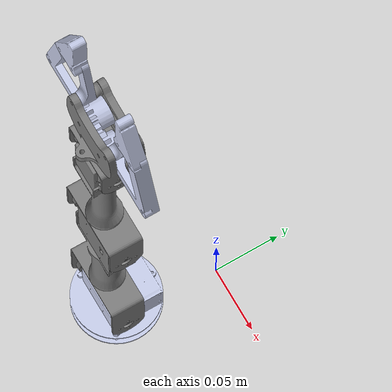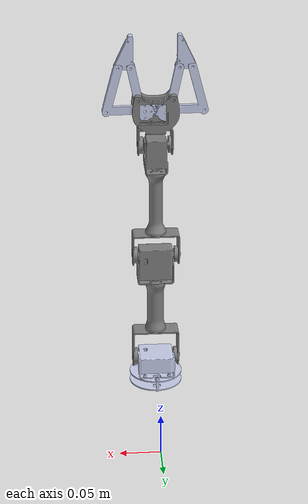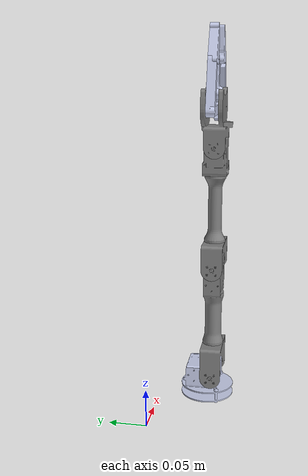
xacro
<?xml version="1.0"?>
<!-- Basic differential drive mobile base -->
<robot xmlns:xacro="http://www.ros.org/wiki/xacro" name="diffdrive_robot">
 <link
        name="arm_Rot">
        <inertial>
            <origin
                xyz="-1.27894101951934E-05 0.0208058767653727 0.00585680210359747"
                rpy="0 0 0" />
            <mass
                value="0.0689676051678483" />
            <inertia
                ixx="1.10736817655159E-05"
                ixy="-9.06572517495388E-09"
                ixz="-2.13237951815141E-10"
                iyy="2.24480121987499E-05"
                iyz="-4.10984989642458E-07"
                izz="1.70252517510809E-05" />
        </inertial>
        <visual>
            <origin
                xyz="0 0 0"
                rpy="0 0 0" />
            <geometry>
                <mesh
                    filename="file://$(find mirte_master_description)/meshes/arm_Rot.STL" />
            </geometry>
            <material
                name="">
                <color
                    rgba="0.792156862745098 0.819607843137255 0.933333333333333 1" />
            </material>
        </visual>
        <collision>
            <origin
                xyz="0 0 0"
                rpy="0 0 0" />
            <geometry>
                <mesh
                    filename="file://$(find mirte_master_description)/meshes/arm_Rot.STL" />
            </geometry>
        </collision>
    </link>
    <joint
        name="arm_Rot_joint"
        type="revolute">
        <origin
            xyz="0 -0.079274 0.06"
            rpy="1.5708 0 3.1416" />
        <parent
            link="frame_link" />
        <child
            link="arm_Rot" />
        <axis
            xyz="0 1 0" />
        <limit
            lower="${pi/-2}"
            upper="${pi/2}"
            effort="2"
            velocity="2"
        />
    </joint>
    <link
        name="arm_Shoulder">
        <inertial>
            <origin
                xyz="0.0764974362945755 0.000442680770353329 -4.93690401059954E-09"
                rpy="0 0 0" />
            <mass
                value="0.104616018825837" />
            <inertia
                ixx="3.85677839717214E-05"
                ixy="1.84827309047044E-08"
                ixz="1.42612941509626E-12"
                iyy="2.54245117502168E-05"
                iyz="-2.05142765424474E-12"
                izz="5.51611966703411E-05" />
        </inertial>
        <visual>
            <origin
                xyz="0 0 0"
                rpy="0 0 0" />
            <geometry>
                <mesh
                    filename="file://$(find mirte_master_description)/meshes/arm_Shoulder.STL" />
            </geometry>
            <material
                name="">
                <color
                    rgba="0.501960784313725 0.501960784313725 0.501960784313725 1" />
            </material>
        </visual>
        <collision>
            <origin
                xyz="0 0 0"
                rpy="0 0 0" />
            <geometry>
                <mesh
                    filename="file://$(find mirte_master_description)/meshes/arm_Shoulder.STL" />
            </geometry>
        </collision>
    </link>
    <joint
        name="arm_Shoulder_joint"
        type="revolute">
        <origin
            xyz="0 0.0281 -0.00625"
            rpy="3.1416 0 1.5708" />
        <parent
            link="arm_Rot" />
        <child
            link="arm_Shoulder" />
        <axis
            xyz="0 1 0" />
        <limit
            lower="${pi/-2}"
            upper="${pi/2}"
            effort="2"
            velocity="2"
        />
    </joint>
    <link
        name="arm_Elbow">
        <inertial>
            <origin
                xyz="0.000768647609078278 0.0642294520091309 -2.34835863116567E-08"
                rpy="0 0 0" />
            <mass
                value="0.0709795960901316" />
            <inertia
                ixx="2.06491501981418E-05"
                ixy="1.76077623308388E-08"
                ixz="-6.06300089698489E-13"
                iyy="2.45686930201746E-05"
                iyz="3.04033870141042E-12"
                izz="3.79131240892547E-05" />
        </inertial>
        <visual>
            <origin
                xyz="0 0 0"
                rpy="0 0 0" />
            <geometry>
                <mesh
                    filename="file://$(find mirte_master_description)/meshes/arm_Elbow.STL" />
            </geometry>
            <material
                name="">
                <color
                    rgba="0.501960784313725 0.501960784313725 0.501960784313725 1" />
            </material>
        </visual>
        <collision>
            <origin
                xyz="0 0 0"
                rpy="0 0 0" />
            <geometry>
                <mesh
                    filename="file://$(find mirte_master_description)/meshes/arm_Elbow.STL" />
            </geometry>
        </collision>
    </link>
    <joint
        name="arm_Elbow_joint"
        type="revolute">
        <origin
            xyz="0.1378 0 0"
            rpy="-3.1416 0 1.5708" />
        <parent
            link="arm_Shoulder" />
        <child
            link="arm_Elbow" />
        <axis
            xyz="1 0 0" />
        <limit
            lower="${pi/-2}"
            upper="${pi/2}"
            effort="2"
            velocity="2"
        />
    </joint>
    <link
        name="arm_Wrist">
        <inertial>
            <origin
                xyz="0.0225315136140379 0.000488092971965825 -2.74405760168628E-06"
                rpy="0 0 0" />
            <mass
                value="0.0464803878756425" />
            <inertia
                ixx="1.36228105923869E-05"
                ixy="-2.7486243117372E-08"
                ixz="-2.82180089490711E-08"
                iyy="7.22412070962973E-06"
                iyz="3.4652740053439E-09"
                izz="1.75204377049058E-05" />
        </inertial>
        <visual>
            <origin
                xyz="0 0 0"
                rpy="0 0 0" />
            <geometry>
                <mesh
                    filename="file://$(find mirte_master_description)/meshes/arm_Wrist.STL" />
            </geometry>
            <material
                name="">
                <color
                    rgba="0.501960784313725 0.501960784313725 0.501960784313725 1" />
            </material>
        </visual>
        <collision>
            <origin
                xyz="0 0 0"
                rpy="0 0 0" />
            <geometry>
                <mesh
                    filename="file://$(find mirte_master_description)/meshes/arm_Wrist.STL" />
            </geometry>
        </collision>
    </link>
    <joint
        name="arm_Wrist_joint"
        type="revolute">
        <origin
            xyz="-0.00014 0.14265 0"
            rpy="3.1416 0 1.5708" />
        <parent
            link="arm_Elbow" />
        <child
            link="arm_Wrist" />
        <axis
            xyz="0 1 0" />
        <limit
            lower="${pi/-2}"
            upper="${pi/2}"
            effort="2"
            velocity="2"
        />
    </joint>
    <link
        name="Gripper">
        <inertial>
            <origin
                xyz="0.0128439388984141 0.00467107677719844 -0.023531822516204"
                rpy="0 0 0" />
            <mass
                value="0.0109603788959771" />
            <inertia
                ixx="1.64287457972505E-06"
                ixy="-2.54915969005551E-10"
                ixz="-3.17766452649769E-07"
                iyy="2.96639543247368E-06"
                iyz="-7.8877045337556E-08"
                izz="1.49193844890504E-06" />
        </inertial>
        <visual>
            <origin
                xyz="0 0 0"
                rpy="0 0 0" />
            <geometry>
                <mesh
                    filename="file://$(find mirte_master_description)/meshes/Gripper.STL" />
            </geometry>
            <material
                name="">
                <color
                    rgba="0.792156862745098 0.819607843137255 0.933333333333333 1" />
            </material>
        </visual>
        <collision>
            <origin
                xyz="0 0 0"
                rpy="0 0 0" />
            <geometry>
                <mesh
                    filename="file://$(find mirte_master_description)/meshes/Gripper.STL" />
            </geometry>
        </collision>
    </link>
    <joint
        name="Gripper_joint"
        type="revolute">
        <origin
            xyz="0.0435 -0.012 0.0045"
            rpy="-1.5708 0 0" />
        <parent
            link="arm_Wrist" />
        <child
            link="Gripper" />
        <axis
            xyz="0 -1 0" />
        <limit
            lower="0"
            upper="${pi/2}"
            effort="2"
            velocity="2"
        />
    </joint>
    <link
        name="_gripper_link_r">
        <inertial>
            <origin
                xyz="-1.28017477174502E-08 0.00327806945611438 -0.015628977594268"
                rpy="0 0 0" />
            <mass
                value="0.00257857268754656" />
            <inertia
                ixx="4.78055533789155E-07"
                ixy="-5.230783542464E-14"
                ixz="-2.66258471113313E-13"
                iyy="4.85504704619794E-07"
                iyz="-3.012555423281E-08"
                izz="3.42900323604584E-08" />
        </inertial>
        <visual>
            <origin
                xyz="0 0 0"
                rpy="0 0 0" />
            <geometry>
                <mesh
                    filename="file://$(find mirte_master_description)/meshes/_gripper_link_r.STL" />
            </geometry>
            <material
                name="">
                <color
                    rgba="0.792156862745098 0.819607843137255 0.933333333333333 1" />
            </material>
        </visual>
        <collision>
            <origin
                xyz="0 0 0"
                rpy="0 0 0" />
            <geometry>
                <mesh
                    filename="file://$(find mirte_master_description)/meshes/_gripper_link_r.STL" />
            </geometry>
        </collision>
    </link>
    <joint
        name="_gripper_link_joint_r"
        type="revolute">
        <origin
            xyz="0.0605 0.0205 -0.0055"
            rpy="1.5708 0 -1.3641" />
        <parent
            link="arm_Wrist" />
        <child
            link="_gripper_link_r" />
        <axis
            xyz="0 0 1" />
        <limit
            lower="0"
            upper="0"
            effort="0"
            velocity="0" />
    </joint>
    <link
        name="gripper_finger_r">
        <inertial>
            <origin
                xyz="0.0053582194655247 0.00456985538673528 -0.0146658643393019"
                rpy="0 0 0" />
            <mass
                value="0.00531205810762776" />
            <inertia
                ixx="6.56191216382328E-07"
                ixy="4.9417968242523E-09"
                ixz="-1.23756532787867E-07"
                iyy="7.67327744037516E-07"
                iyz="3.35637410041389E-08"
                izz="1.97644006824673E-07" />
        </inertial>
        <visual>
            <origin
                xyz="0 0 0"
                rpy="0 0 0" />
            <geometry>
                <mesh
                    filename="file://$(find mirte_master_description)/meshes/gripper_finger_r.STL" />
            </geometry>
            <material
                name="">
                <color
                    rgba="0.792156862745098 0.819607843137255 0.933333333333333 1" />
            </material>
        </visual>
        <collision>
            <origin
                xyz="0 0 0"
                rpy="0 0 0" />
            <geometry>
                <mesh
                    filename="file://$(find mirte_master_description)/meshes/gripper_finger_r.STL" />
            </geometry>
        </collision>
    </link>
    <joint
        name="gripper_finger_joint_r"
        type="revolute">
        <origin
            xyz="0 0.01 -0.037"
            rpy="0 0.20667 3.1416" />
        <parent
            link="_gripper_link_r" />
        <child
            link="gripper_finger_r" />
        <axis
            xyz="0 0 1" />
        <limit
            lower="0"
            upper="0"
            effort="0"
            velocity="0" />
    </joint>
    <link
        name="_gripper_link_l">
        <inertial>
            <origin
                xyz="-2.05686406795635E-09 0.00327805387383495 -0.0156289677422455"
                rpy="0 0 0" />
            <mass
                value="0.0025785751096632" />
            <inertia
                ixx="4.78055731035803E-07"
                ixy="1.11114248069431E-14"
                ixz="5.45978048241403E-14"
                iyy="4.85504889003676E-07"
                iyz="-3.01256260104972E-08"
                izz="3.4290092499709E-08" />
        </inertial>
        <visual>
            <origin
                xyz="0 0 0"
                rpy="0 0 0" />
            <geometry>
                <mesh
                    filename="file://$(find mirte_master_description)/meshes/_gripper_link_l.STL" />
            </geometry>
            <material
                name="">
                <color
                    rgba="0.792156862745098 0.819607843137255 0.933333333333333 1" />
            </material>
        </visual>
        <collision>
            <origin
                xyz="0 0 0"
                rpy="0 0 0" />
            <geometry>
                <mesh
                    filename="file://$(find mirte_master_description)/meshes/_gripper_link_l.STL" />
            </geometry>
        </collision>
    </link>
    <joint
        name="_gripper_link_joint_l"
        type="revolute">
        <origin
            xyz="0.0605 -0.0205 -0.0055"
            rpy="1.5708 0 -1.7775" />
        <parent
            link="arm_Wrist" />
        <child
            link="_gripper_link_l" />
        <axis
            xyz="0 0 1" />
        <limit
            lower="0"
            upper="0"
            effort="0"
            velocity="0" />
    </joint>
    <link
        name="gripper_finger_l">
        <inertial>
            <origin
                xyz="0.00535821399237165 0.00543015238565805 -0.0146658496889369"
                rpy="0 0 0" />
            <mass
                value="0.00531205810762777" />
            <inertia
                ixx="6.56191216382329E-07"
                ixy="-4.94179682425222E-09"
                ixz="-1.23756532787868E-07"
                iyy="7.67327744037519E-07"
                iyz="-3.35637410041387E-08"
                izz="1.97644006824674E-07" />
        </inertial>
        <visual>
            <origin
                xyz="0 0 0"
                rpy="0 0 0" />
            <geometry>
                <mesh
                    filename="file://$(find mirte_master_description)/meshes/gripper_finger_l.STL" />
            </geometry>
            <material
                name="">
                <color
                    rgba="0.792156862745098 0.819607843137255 0.933333333333333 1" />
            </material>
        </visual>
        <collision>
            <origin
                xyz="0 0 0"
                rpy="0 0 0" />
            <geometry>
                <mesh
                    filename="file://$(find mirte_master_description)/meshes/gripper_finger_l.STL" />
            </geometry>
        </collision>
    </link>
    <joint
        name="gripper_finger_joint_l"
        type="revolute">
        <origin
            xyz="0 0 -0.037"
            rpy="0 0.20667 0" />
        <parent
            link="_gripper_link_l" />
        <child
            link="gripper_finger_l" />
        <axis
            xyz="0 0 1" />
        <limit
            lower="0"
            upper="0"
            effort="0"
            velocity="0" />
    </joint>
    <link
        name="_Gripper_r">
        <inertial>
            <origin
                xyz="-0.011058953981311 0.00572378908343621 -0.0203029402870159"
                rpy="0 0 0" />
            <mass
                value="0.0127576574866818" />
            <inertia
                ixx="1.91784274511554E-06"
                ixy="-2.13316668505462E-10"
                ixz="3.18097729104346E-07"
                iyy="3.19294602407598E-06"
                iyz="-1.86219200901589E-07"
                izz="1.63755141963222E-06" />
        </inertial>
        <visual>
            <origin
                xyz="0 0 0"
                rpy="0 0 0" />
            <geometry>
                <mesh
                    filename="file://$(find mirte_master_description)/meshes/_Gripper_r.STL" />
            </geometry>
            <material
                name="">
                <color
                    rgba="0.792156862745098 0.819607843137255 0.933333333333333 1" />
            </material>
        </visual>
        <collision>
            <origin
                xyz="0 0 0"
                rpy="0 0 0" />
            <geometry>
                <mesh
                    filename="file://$(find mirte_master_description)/meshes/_Gripper_r.STL" />
            </geometry>
        </collision>
    </link>
    <joint
        name="_Gripper_joint_r"
        type="revolute">
        <origin
            xyz="0.0435 0.012 0.0045"
            rpy="-1.5708 0 -3.1416" />
        <parent
            link="arm_Wrist" />
        <child
            link="_Gripper_r" />
        <axis
            xyz="0 0 1" />
        <limit
            lower="0"
            upper="0"
            effort="0"
            velocity="0" />
    </joint>
    <xacro:macro name="joint" params="name prefix">
      <joint name="arm_${prefix}${name}_joint">
        <command_interface name="position"/>
        <state_interface name="position"/>
      </joint>
</xacro:macro>
  <xacro:arg name="prefix" default="" />
    <link name="frame_link">
</link>

            <ros2_control name="arm_control" type="system">
      <hardware>
        <plugin>mirte_master_arm_control/MirteMasterArmHWInterface</plugin>
      </hardware>
      <xacro:joint prefix="$(arg prefix)" name="rotate"  />
        <xacro:joint prefix="$(arg prefix)" name="shoulder"  />
        <xacro:joint prefix="$(arg prefix)" name="elbow"  />
        <xacro:joint prefix="$(arg prefix)" name="wrist"  />
    </ros2_control>

</robot>
